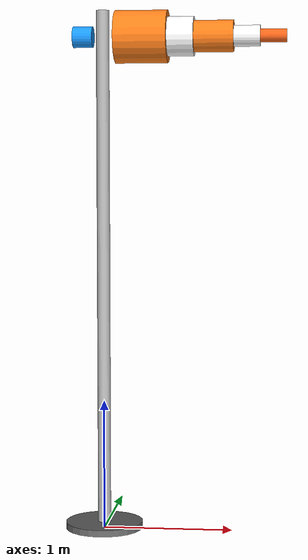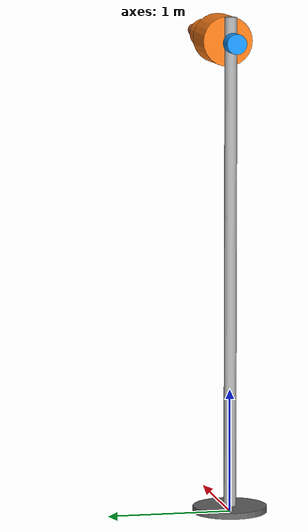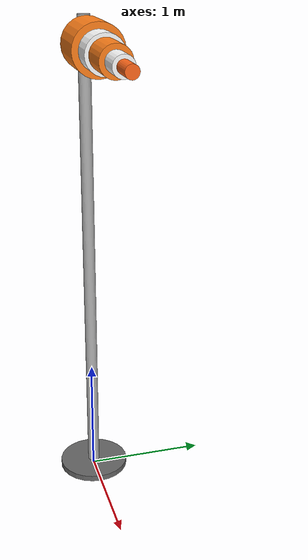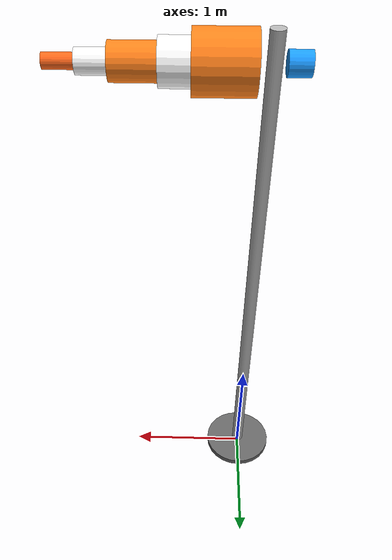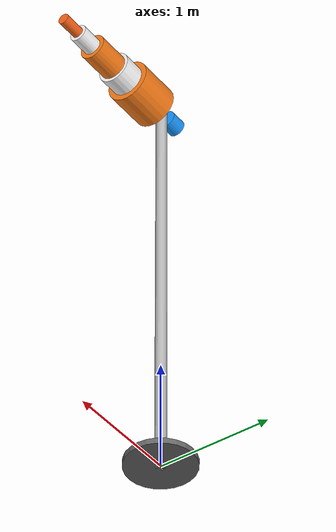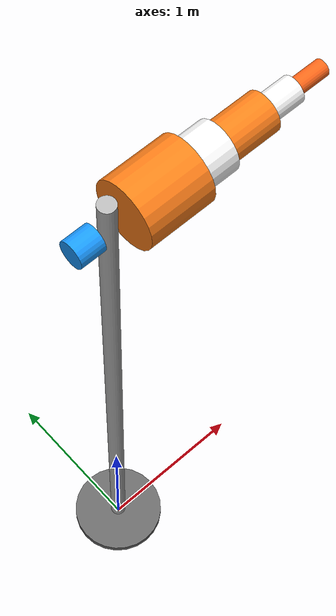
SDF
<?xml version="1.0"?>
<sdf version="1.6">
  <!--
    Wind Flag Model with Dynamic Wind Indicator Plugin
    The flag rotates based on /wind/velocity ROS2 topic
  -->
  <model name="wind_flag">
    <static>false</static>

    <!-- Fixed base/pole - doesn't rotate -->
    <link name="base">
      <pose>0 0 0 0 0 0</pose>
      <inertial>
        <mass>100</mass>
        <inertia>
          <ixx>100</ixx><iyy>100</iyy><izz>100</izz>
          <ixy>0</ixy><ixz>0</ixz><iyz>0</iyz>
        </inertia>
      </inertial>
      <!-- Pole -->
      <visual name="pole">
        <pose>0 0 2 0 0 0</pose>
        <geometry>
          <cylinder>
            <radius>0.05</radius>
            <length>4.0</length>
          </cylinder>
        </geometry>
        <material>
          <ambient>0.6 0.6 0.6 1</ambient>
          <diffuse>0.7 0.7 0.7 1</diffuse>
        </material>
      </visual>
      <!-- Base plate -->
      <visual name="base_plate">
        <pose>0 0 0.025 0 0 0</pose>
        <geometry>
          <cylinder>
            <radius>0.3</radius>
            <length>0.05</length>
          </cylinder>
        </geometry>
        <material>
          <ambient>0.3 0.3 0.3 1</ambient>
          <diffuse>0.4 0.4 0.4 1</diffuse>
        </material>
      </visual>
      <collision name="base_collision">
        <pose>0 0 0.025 0 0 0</pose>
        <geometry>
          <cylinder>
            <radius>0.3</radius>
            <length>0.05</length>
          </cylinder>
        </geometry>
      </collision>
    </link>

    <!-- Rotating flag/sock assembly -->
    <link name="flag">
      <pose>0 0 3.8 0 0 0</pose>
      <inertial>
        <mass>0.5</mass>
        <inertia>
          <ixx>0.01</ixx><iyy>0.1</iyy><izz>0.1</izz>
          <ixy>0</ixy><ixz>0</ixz><iyz>0</iyz>
        </inertia>
      </inertial>
      <!-- Windsock cone - orange/red stripes -->
      <visual name="sock_1">
        <pose>0.3 0 0 0 1.5708 0</pose>
        <geometry>
          <cylinder>
            <radius>0.2</radius>
            <length>0.4</length>
          </cylinder>
        </geometry>
        <material>
          <ambient>1 0.4 0 1</ambient>
          <diffuse>1 0.5 0.1 1</diffuse>
        </material>
      </visual>
      <visual name="sock_2">
        <pose>0.6 0 0 0 1.5708 0</pose>
        <geometry>
          <cylinder>
            <radius>0.15</radius>
            <length>0.2</length>
          </cylinder>
        </geometry>
        <material>
          <ambient>1 1 1 1</ambient>
          <diffuse>1 1 1 1</diffuse>
        </material>
      </visual>
      <visual name="sock_3">
        <pose>0.85 0 0 0 1.5708 0</pose>
        <geometry>
          <cylinder>
            <radius>0.12</radius>
            <length>0.3</length>
          </cylinder>
        </geometry>
        <material>
          <ambient>1 0.4 0 1</ambient>
          <diffuse>1 0.5 0.1 1</diffuse>
        </material>
      </visual>
      <visual name="sock_4">
        <pose>1.1 0 0 0 1.5708 0</pose>
        <geometry>
          <cylinder>
            <radius>0.08</radius>
            <length>0.2</length>
          </cylinder>
        </geometry>
        <material>
          <ambient>1 1 1 1</ambient>
          <diffuse>1 1 1 1</diffuse>
        </material>
      </visual>
      <visual name="sock_tip">
        <pose>1.3 0 0 0 1.5708 0</pose>
        <geometry>
          <cylinder>
            <radius>0.05</radius>
            <length>0.2</length>
          </cylinder>
        </geometry>
        <material>
          <ambient>1 0.3 0 1</ambient>
          <diffuse>1 0.4 0.1 1</diffuse>
        </material>
      </visual>
      <!-- Arrow direction indicator at base of sock -->
      <visual name="direction_arrow">
        <pose>-0.15 0 0 0 1.5708 0</pose>
        <geometry>
          <cylinder>
            <radius>0.08</radius>
            <length>0.15</length>
          </cylinder>
        </geometry>
        <material>
          <ambient>0 0.5 1 1</ambient>
          <diffuse>0.1 0.6 1 1</diffuse>
        </material>
      </visual>
    </link>

    <!-- Joint connecting flag to pole (rotates around Z) -->
    <joint name="flag_joint" type="revolute">
      <parent>base</parent>
      <child>flag</child>
      <axis>
        <xyz>0 0 1</xyz>
        <limit>
          <lower>-3.15</lower>
          <upper>3.15</upper>
        </limit>
        <dynamics>
          <damping>0.5</damping>
        </dynamics>
      </axis>
    </joint>

    <!-- Wind flag plugin - rotates flag based on wind direction -->
    <plugin name="wind_flag_plugin" filename="libwind_flag_plugin.so">
      <joint_name>flag_joint</joint_name>
      <wind_topic>/wind/velocity</wind_topic>
      <update_rate>10</update_rate>
    </plugin>
  </model>
</sdf>
